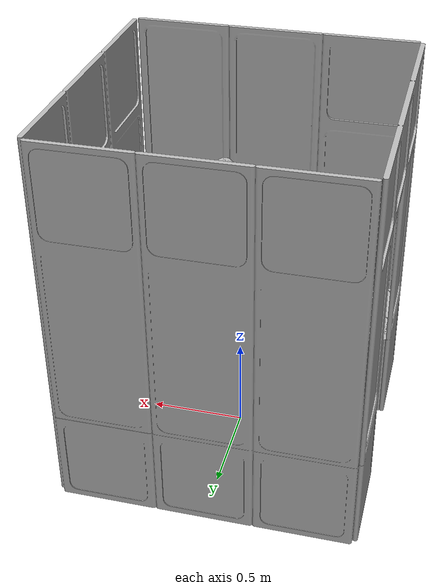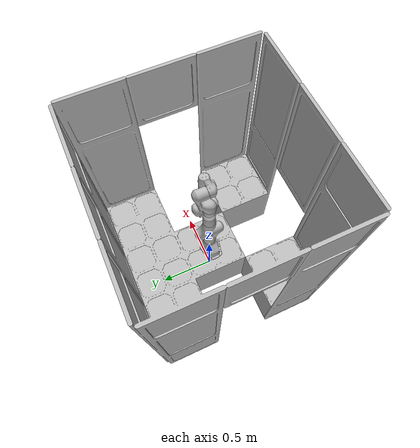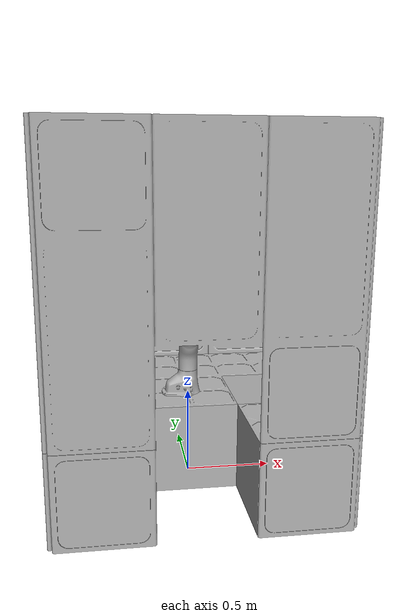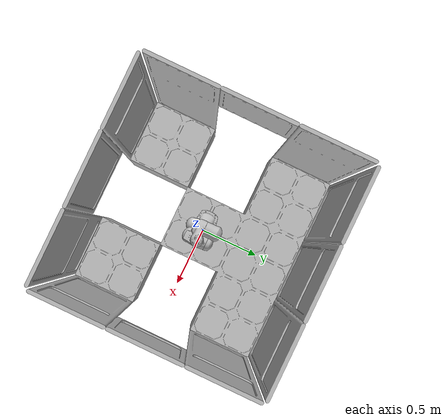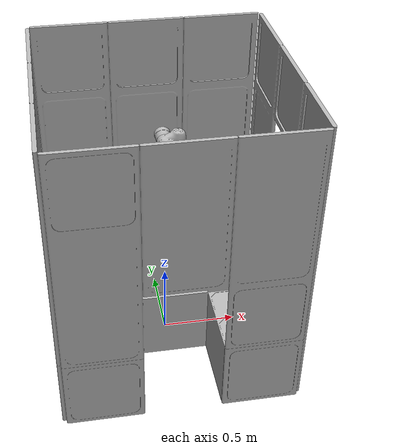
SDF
<?xml version="1.0" ?>
<sdf version="1.6">
  <world name="workcell">

    <!-- Minimal enclosure -->
    <model name="enclosure">
      <link name="enclosure_link">
        <visual name="enclosure_visual">
          <geometry>
            <mesh>
              <uri>enclosure/meshes/enclosure_visual.obj</uri>
            </mesh>
          </geometry>
        </visual>
      </link>
    </model>

    <!-- Minimal panda Arm -->
    <model name="panda">
    <pose>0 0 0.5 0 0 0</pose>
    <link name="panda_link0">
      <visual name="panda_link0_visual">
        <geometry>
          <mesh>
            <uri>panda/meshes/visual/link0.obj</uri>
          </mesh>
        </geometry>
      </visual>
    </link>
    <link name="panda_link1">
      <pose relative_to="panda_link0">0 0 0.333 0 0 0</pose>
      <visual name="panda_link1_visual">
        <geometry>
          <mesh>
            <uri>panda/meshes/visual/link1.obj</uri>
          </mesh>
        </geometry>
      </visual>
    </link>
    <link name="panda_link2">
      <pose relative_to="panda_link1">0 0 0 -1.570796326794897 0 0</pose>
      <visual name="panda_link2_visual">
        <geometry>
          <mesh>
            <uri>panda/meshes/visual/link2.obj</uri>
          </mesh>
        </geometry>
      </visual>
    </link>
    <link name="panda_link3">
      <pose relative_to="panda_link2">0 -0.316 0 1.570796326794897 0 0</pose>
      <visual name="panda_link3_visual">
        <geometry>
          <mesh>
            <uri>panda/meshes/visual/link3.obj</uri>
          </mesh>
        </geometry>
      </visual>
    </link>
    <link name="panda_link4">
      <pose relative_to="panda_link3">0.0825 0 0 1.570796326794897 0 0</pose>
      <visual name="panda_link4_visual">
        <geometry>
          <mesh>
            <uri>panda/meshes/visual/link4.obj</uri>
          </mesh>
        </geometry>
      </visual>
    </link>
    <link name="panda_link5">
      <pose relative_to="panda_link4">-0.0825 0.384 0 -1.570796326794897 0 0</pose>
      <visual name="panda_link5_visual">
        <geometry>
          <mesh>
            <uri>panda/meshes/visual/link5.obj</uri>
          </mesh>
        </geometry>
      </visual>
    </link>
    <link name="panda_link6">
      <pose relative_to="panda_link5">0 0 0 1.570796326794897 0 0.0</pose>
      <visual name="panda_link6_visual">
        <geometry>
          <mesh>
            <uri>panda/meshes/visual/link6.obj</uri>
          </mesh>
        </geometry>
      </visual>
    </link>
    <link name="panda_link7">
      <pose relative_to="panda_link6">0.088 0 0 1.570796326794897 -0.8 0.0</pose>
      <visual name="panda_link7_visual">
        <geometry>
          <mesh>
            <uri>panda/meshes/visual/link7.obj</uri>
          </mesh>
        </geometry>
      </visual>
    </link>
  </model>
  </world>
</sdf>
